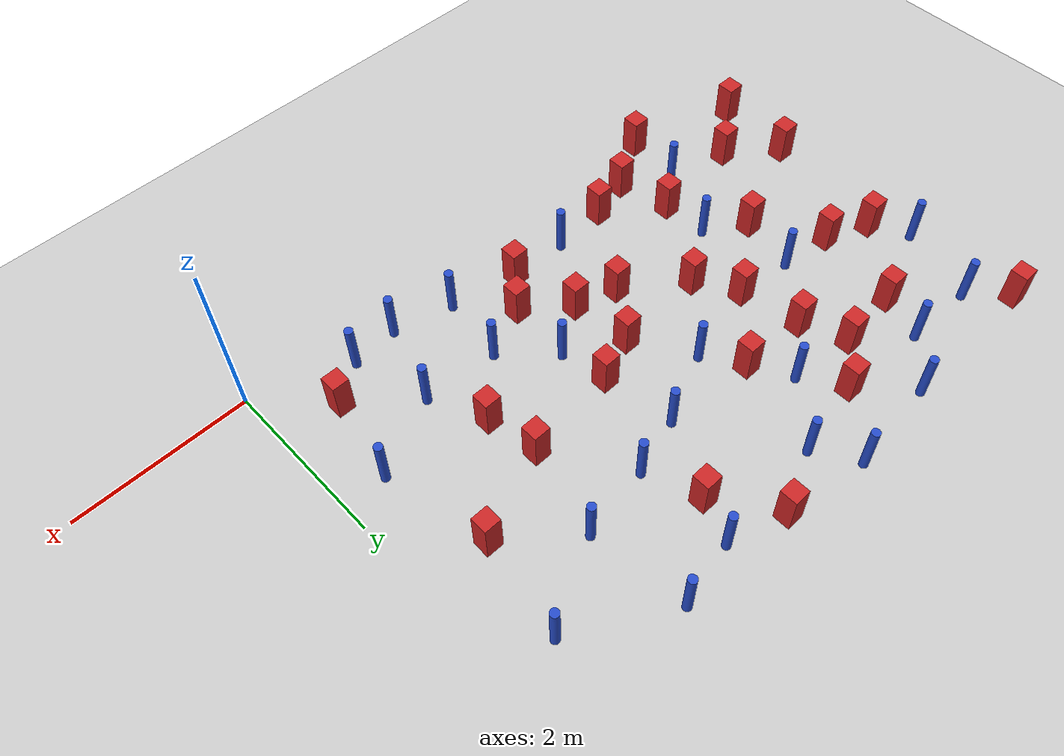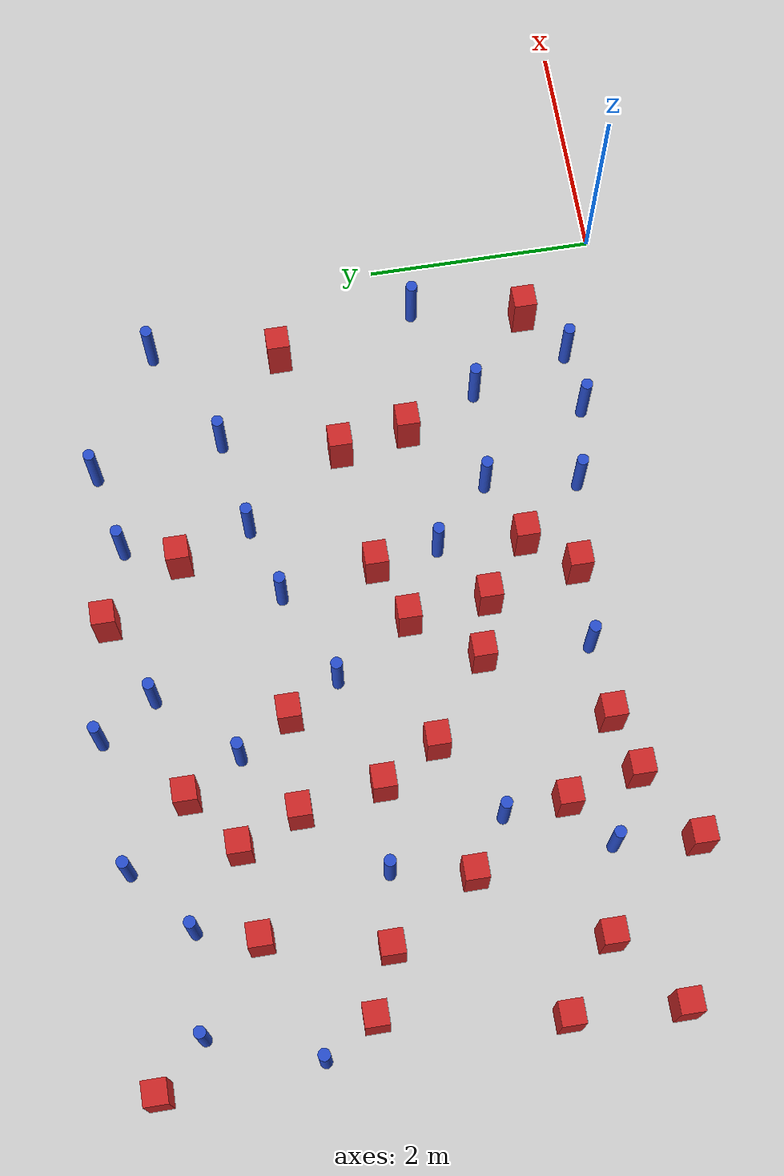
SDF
<sdf version="1.6">
 <world name="default">
  <model name="ground_plane">
   <static>1</static>
   <link name="link">
    <collision name="collision">
     <geometry><plane><normal>0 0 1</normal><size>100 100</size></plane></geometry>
     <surface><friction><ode><mu>100</mu><mu2>50</mu2></ode></friction></surface>
    </collision>
    <visual name="visual">
     <cast_shadows>0</cast_shadows>
     <geometry><plane><normal>0 0 1</normal><size>100 100</size></plane></geometry>
     <material>
      <ambient>1.0 1.0 1.0 1.0</ambient>
      <diffuse>0.8 0.8 0.8 1.0</diffuse>
      <specular>0.01 0.01 0.01 1.000000</specular>
     </material>
    </visual>
   </link>
  </model>
  <model name="pole_obstacle2">
   <static>true</static>
   <pose>-0.487812181251 1.71194919246 -9.47619616065e-06 5.49618799738e-07 2.36310414059e-07 -1.55090534802e-07</pose>
   <link name="link">
    <pose>0 0 0.3 0 -0 0</pose>
    <inertial>
     <mass>1</mass>
     <inertia><ixx>0.145833</ixx><ixy>0</ixy><ixz>0</ixz><iyy>0.145833</iyy><iyz>0</iyz><izz>0.125</izz></inertia>
    </inertial>
    <collision name="collision">
     <geometry><cylinder><radius>0.05</radius><length>.6</length></cylinder></geometry>
    </collision>
    <visual name="visual">
     <geometry><cylinder><radius>0.05</radius><length>.6</length></cylinder></geometry>
     <material>
      <script><name>Gazebo/Blue</name><uri>file://media/materials/scripts/gazebo.material</uri></script>
     </material>
    </visual>
   </link>
  </model>
  <model name="pole_obstacle3">
   <static>true</static>
   <pose>-5.50317847386 0.870224016151 -9.47619616065e-06 5.49618799737e-07 2.36310414061e-07 -1.550905348e-07</pose>
   <link name="link">
    <pose>0 0 0.3 0 -0 0</pose>
    <inertial>
     <mass>1</mass>
     <inertia><ixx>0.145833</ixx><ixy>0</ixy><ixz>0</ixz><iyy>0.145833</iyy><iyz>0</iyz><izz>0.125</izz></inertia>
    </inertial>
    <collision name="collision">
     <geometry><cylinder><radius>0.05</radius><length>.6</length></cylinder></geometry>
    </collision>
    <visual name="visual">
     <geometry><cylinder><radius>0.05</radius><length>.6</length></cylinder></geometry>
     <material>
      <script><name>Gazebo/Blue</name><uri>file://media/materials/scripts/gazebo.material</uri></script>
     </material>
    </visual>
   </link>
  </model>
  <model name="pole_obstacle5">
   <static>true</static>
   <pose>-3.71422850612 4.40279073542 -9.47619616065e-06 5.49618799738e-07 2.3631041406e-07 -1.55090534801e-07</pose>
   <link name="link">
    <pose>0 0 0.3 0 -0 0</pose>
    <inertial>
     <mass>1</mass>
     <inertia><ixx>0.145833</ixx><ixy>0</ixy><ixz>0</ixz><iyy>0.145833</iyy><iyz>0</iyz><izz>0.125</izz></inertia>
    </inertial>
    <collision name="collision">
     <geometry><cylinder><radius>0.05</radius><length>.6</length></cylinder></geometry>
    </collision>
    <visual name="visual">
     <geometry><cylinder><radius>0.05</radius><length>.6</length></cylinder></geometry>
     <material>
      <script><name>Gazebo/Blue</name><uri>file://media/materials/scripts/gazebo.material</uri></script>
     </material>
    </visual>
   </link>
  </model>
  <model name="pole_obstacle18">
   <static>true</static>
   <pose>-4.31520111858 3.75817734004 -9.47619616065e-06 5.49618799738e-07 2.36310414051e-07 -1.55090534805e-07</pose>
   <link name="link">
    <pose>0 0 0.3 0 -0 0</pose>
    <inertial>
     <mass>1</mass>
     <inertia><ixx>0.145833</ixx><ixy>0</ixy><ixz>0</ixz><iyy>0.145833</iyy><iyz>0</iyz><izz>0.125</izz></inertia>
    </inertial>
    <collision name="collision">
     <geometry><cylinder><radius>0.05</radius><length>.6</length></cylinder></geometry>
    </collision>
    <visual name="visual">
     <geometry><cylinder><radius>0.05</radius><length>.6</length></cylinder></geometry>
     <material>
      <script><name>Gazebo/Blue</name><uri>file://media/materials/scripts/gazebo.material</uri></script>
     </material>
    </visual>
   </link>
  </model>
  <model name="pole_obstacle20">
   <static>true</static>
   <pose>-3.78402829813 2.87094932875 -9.47619616065e-06 5.49618799737e-07 2.36310414051e-07 -1.55090534807e-07</pose>
   <link name="link">
    <pose>0 0 0.3 0 -0 0</pose>
    <inertial>
     <mass>1</mass>
     <inertia><ixx>0.145833</ixx><ixy>0</ixy><ixz>0</ixz><iyy>0.145833</iyy><iyz>0</iyz><izz>0.125</izz></inertia>
    </inertial>
    <collision name="collision">
     <geometry><cylinder><radius>0.05</radius><length>.6</length></cylinder></geometry>
    </collision>
    <visual name="visual">
     <geometry><cylinder><radius>0.05</radius><length>.6</length></cylinder></geometry>
     <material>
      <script><name>Gazebo/Blue</name><uri>file://media/materials/scripts/gazebo.material</uri></script>
     </material>
    </visual>
   </link>
  </model>
  <model name="square_post_obstacle19">
   <static>true</static>
   <pose>-2.54614437355 4.04797166658 -6.11067671241e-07 -5.50515727128e-06 -8.79689657224e-07 2.37013304536e-05</pose>
   <link name="link">
    <pose>0 0 0.25 0 -0 0</pose>
    <inertial>
     <mass>100</mass>
     <inertia>
      <ixx>0.166667</ixx>
      <ixy>0</ixy>
      <ixz>0</ixz>
      <iyy>0.166667</iyy>
      <iyz>0</iyz>
      <izz>0.166667</izz>
     </inertia>
    </inertial>
    <collision name="collision"><geometry><box><size>.2 .2 .5</size></box></geometry></collision>
    <visual name="visual">
     <geometry><box><size>.2 .2 .5</size></box></geometry>
     <material>
      <script><name>Gazebo/Red</name><uri>file://media/materials/scripts/gazebo.material</uri></script>
     </material>
    </visual>
   </link>
  </model>
  <model name="square_post_obstacle20">
   <static>true</static>
   <pose>-1.64522488494 1.94039858455 -6.11067671241e-07 -5.50515727128e-06 -8.79689657224e-07 2.37013304536e-05</pose>
   <link name="link">
    <pose>0 0 0.25 0 -0 0</pose>
    <inertial>
     <mass>100</mass>
     <inertia>
      <ixx>0.166667</ixx>
      <ixy>0</ixy>
      <ixz>0</ixz>
      <iyy>0.166667</iyy>
      <iyz>0</iyz>
      <izz>0.166667</izz>
     </inertia>
    </inertial>
    <collision name="collision"><geometry><box><size>.2 .2 .5</size></box></geometry></collision>
    <visual name="visual">
     <geometry><box><size>.2 .2 .5</size></box></geometry>
     <material>
      <script><name>Gazebo/Red</name><uri>file://media/materials/scripts/gazebo.material</uri></script>
     </material>
    </visual>
   </link>
  </model>
  <model name="square_post_obstacle26">
   <static>true</static>
   <pose>-5.07294095432 3.85860323754 -6.11067671241e-07 -5.50515727128e-06 -8.79689657224e-07 2.37013304536e-05</pose>
   <link name="link">
    <pose>0 0 0.25 0 -0 0</pose>
    <inertial>
     <mass>100</mass>
     <inertia>
      <ixx>0.166667</ixx>
      <ixy>0</ixy>
      <ixz>0</ixz>
      <iyy>0.166667</iyy>
      <iyz>0</iyz>
      <izz>0.166667</izz>
     </inertia>
    </inertial>
    <collision name="collision"><geometry><box><size>.2 .2 .5</size></box></geometry></collision>
    <visual name="visual">
     <geometry><box><size>.2 .2 .5</size></box></geometry>
     <material>
      <script><name>Gazebo/Red</name><uri>file://media/materials/scripts/gazebo.material</uri></script>
     </material>
    </visual>
   </link>
  </model>
  <model name="pole_obstacle38">
   <static>true</static>
   <pose>-1.36304623813 1.29198573538 -9.47619616065e-06 5.49618799737e-07 2.36310414065e-07 -1.55090534798e-07</pose>
   <link name="link">
    <pose>0 0 0.3 0 -0 0</pose>
    <inertial>
     <mass>1</mass>
     <inertia><ixx>0.145833</ixx><ixy>0</ixy><ixz>0</ixz><iyy>0.145833</iyy><iyz>0</iyz><izz>0.125</izz></inertia>
    </inertial>
    <collision name="collision">
     <geometry><cylinder><radius>0.05</radius><length>.6</length></cylinder></geometry>
    </collision>
    <visual name="visual">
     <geometry><cylinder><radius>0.05</radius><length>.6</length></cylinder></geometry>
     <material>
      <script><name>Gazebo/Blue</name><uri>file://media/materials/scripts/gazebo.material</uri></script>
     </material>
    </visual>
   </link>
  </model>
  <model name="square_post_obstacle33">
   <static>true</static>
   <pose>-6.04896330188 2.77622081307 -6.11067671241e-07 -5.50515727128e-06 -8.79689657224e-07 2.37013304536e-05</pose>
   <link name="link">
    <pose>0 0 0.25 0 -0 0</pose>
    <inertial>
     <mass>100</mass>
     <inertia>
      <ixx>0.166667</ixx>
      <ixy>0</ixy>
      <ixz>0</ixz>
      <iyy>0.166667</iyy>
      <iyz>0</iyz>
      <izz>0.166667</izz>
     </inertia>
    </inertial>
    <collision name="collision"><geometry><box><size>.2 .2 .5</size></box></geometry></collision>
    <visual name="visual">
     <geometry><box><size>.2 .2 .5</size></box></geometry>
     <material>
      <script><name>Gazebo/Red</name><uri>file://media/materials/scripts/gazebo.material</uri></script>
     </material>
    </visual>
   </link>
  </model>
  <model name="pole_obstacle43">
   <static>true</static>
   <pose>-6.50061672788 4.32821319928 -9.47619616065e-06 5.49618799737e-07 2.36310414037e-07 -1.55090534814e-07</pose>
   <link name="link">
    <pose>0 0 0.3 0 -0 0</pose>
    <inertial>
     <mass>1</mass>
     <inertia><ixx>0.145833</ixx><ixy>0</ixy><ixz>0</ixz><iyy>0.145833</iyy><iyz>0</iyz><izz>0.125</izz></inertia>
    </inertial>
    <collision name="collision">
     <geometry><cylinder><radius>0.05</radius><length>.6</length></cylinder></geometry>
    </collision>
    <visual name="visual">
     <geometry><cylinder><radius>0.05</radius><length>.6</length></cylinder></geometry>
     <material>
      <script><name>Gazebo/Blue</name><uri>file://media/materials/scripts/gazebo.material</uri></script>
     </material>
    </visual>
   </link>
  </model>
  <model name="pole_obstacle46">
   <static>true</static>
   <pose>-1.63887279554 4.67150877002 -9.47619616065e-06 5.49618799737e-07 2.36310414061e-07 -1.550905348e-07</pose>
   <link name="link">
    <pose>0 0 0.3 0 -0 0</pose>
    <inertial>
     <mass>1</mass>
     <inertia><ixx>0.145833</ixx><ixy>0</ixy><ixz>0</ixz><iyy>0.145833</iyy><iyz>0</iyz><izz>0.125</izz></inertia>
    </inertial>
    <collision name="collision">
     <geometry><cylinder><radius>0.05</radius><length>.6</length></cylinder></geometry>
    </collision>
    <visual name="visual">
     <geometry><cylinder><radius>0.05</radius><length>.6</length></cylinder></geometry>
     <material>
      <script><name>Gazebo/Blue</name><uri>file://media/materials/scripts/gazebo.material</uri></script>
     </material>
    </visual>
   </link>
  </model>
  <model name="square_post_obstacle41">
   <static>true</static>
   <pose>-5.57510679482 2.03123763137 -6.11067671241e-07 -5.50515727128e-06 -8.79689657224e-07 2.37013304536e-05</pose>
   <link name="link">
    <pose>0 0 0.25 0 -0 0</pose>
    <inertial>
     <mass>100</mass>
     <inertia>
      <ixx>0.166667</ixx>
      <ixy>0</ixy>
      <ixz>0</ixz>
      <iyy>0.166667</iyy>
      <iyz>0</iyz>
      <izz>0.166667</izz>
     </inertia>
    </inertial>
    <collision name="collision"><geometry><box><size>.2 .2 .5</size></box></geometry></collision>
    <visual name="visual">
     <geometry><box><size>.2 .2 .5</size></box></geometry>
     <material>
      <script><name>Gazebo/Red</name><uri>file://media/materials/scripts/gazebo.material</uri></script>
     </material>
    </visual>
   </link>
  </model>
  <model name="pole_obstacle56">
   <static>true</static>
   <pose>-2.97974586551 3.22970133731 -9.47619616065e-06 5.49618799737e-07 2.36310414051e-07 -1.55090534807e-07</pose>
   <link name="link">
    <pose>0 0 0.3 0 -0 0</pose>
    <inertial>
     <mass>1</mass>
     <inertia><ixx>0.145833</ixx><ixy>0</ixy><ixz>0</ixz><iyy>0.145833</iyy><iyz>0</iyz><izz>0.125</izz></inertia>
    </inertial>
    <collision name="collision">
     <geometry><cylinder><radius>0.05</radius><length>.6</length></cylinder></geometry>
    </collision>
    <visual name="visual">
     <geometry><cylinder><radius>0.05</radius><length>.6</length></cylinder></geometry>
     <material>
      <script><name>Gazebo/Blue</name><uri>file://media/materials/scripts/gazebo.material</uri></script>
     </material>
    </visual>
   </link>
  </model>
  <model name="pole_obstacle59">
   <static>true</static>
   <pose>-2.33032929093 3.42138777364 -9.47619616065e-06 5.49618799737e-07 2.36310414051e-07 -1.55090534807e-07</pose>
   <link name="link">
    <pose>0 0 0.3 0 -0 0</pose>
    <inertial>
     <mass>1</mass>
     <inertia><ixx>0.145833</ixx><ixy>0</ixy><ixz>0</ixz><iyy>0.145833</iyy><iyz>0</iyz><izz>0.125</izz></inertia>
    </inertial>
    <collision name="collision">
     <geometry><cylinder><radius>0.05</radius><length>.6</length></cylinder></geometry>
    </collision>
    <visual name="visual">
     <geometry><cylinder><radius>0.05</radius><length>.6</length></cylinder></geometry>
     <material>
      <script><name>Gazebo/Blue</name><uri>file://media/materials/scripts/gazebo.material</uri></script>
     </material>
    </visual>
   </link>
  </model>
  <model name="pole_obstacle64">
   <static>true</static>
   <pose>-0.558074458231 4.06157313084 -9.47619616065e-06 5.49618799737e-07 2.36310414065e-07 -1.55090534796e-07</pose>
   <link name="link">
    <pose>0 0 0.3 0 -0 0</pose>
    <inertial>
     <mass>1</mass>
     <inertia><ixx>0.145833</ixx><ixy>0</ixy><ixz>0</ixz><iyy>0.145833</iyy><iyz>0</iyz><izz>0.125</izz></inertia>
    </inertial>
    <collision name="collision">
     <geometry><cylinder><radius>0.05</radius><length>.6</length></cylinder></geometry>
    </collision>
    <visual name="visual">
     <geometry><cylinder><radius>0.05</radius><length>.6</length></cylinder></geometry>
     <material>
      <script><name>Gazebo/Blue</name><uri>file://media/materials/scripts/gazebo.material</uri></script>
     </material>
    </visual>
   </link>
  </model>
  <model name="square_post_obstacle58">
   <static>true</static>
   <pose>-6.84810403469 0.579750207373 -6.11067671241e-07 -5.50515727128e-06 -8.79689657224e-07 2.37013304536e-05</pose>
   <link name="link">
    <pose>0 0 0.25 0 -0 0</pose>
    <inertial>
     <mass>100</mass>
     <inertia>
      <ixx>0.166667</ixx>
      <ixy>0</ixy>
      <ixz>0</ixz>
      <iyy>0.166667</iyy>
      <iyz>0</iyz>
      <izz>0.166667</izz>
     </inertia>
    </inertial>
    <collision name="collision"><geometry><box><size>.2 .2 .5</size></box></geometry></collision>
    <visual name="visual">
     <geometry><box><size>.2 .2 .5</size></box></geometry>
     <material>
      <script><name>Gazebo/Red</name><uri>file://media/materials/scripts/gazebo.material</uri></script>
     </material>
    </visual>
   </link>
  </model>
  <model name="square_post_obstacle72">
   <static>true</static>
   <pose>-4.73880773252 2.63555104784 -6.11067671241e-07 -5.50515727128e-06 -8.79689657224e-07 2.37013304536e-05</pose>
   <link name="link">
    <pose>0 0 0.25 0 -0 0</pose>
    <inertial>
     <mass>100</mass>
     <inertia>
      <ixx>0.166667</ixx>
      <ixy>0</ixy>
      <ixz>0</ixz>
      <iyy>0.166667</iyy>
      <iyz>0</iyz>
      <izz>0.166667</izz>
     </inertia>
    </inertial>
    <collision name="collision"><geometry><box><size>.2 .2 .5</size></box></geometry></collision>
    <visual name="visual">
     <geometry><box><size>.2 .2 .5</size></box></geometry>
     <material>
      <script><name>Gazebo/Red</name><uri>file://media/materials/scripts/gazebo.material</uri></script>
     </material>
    </visual>
   </link>
  </model>
  <model name="square_post_obstacle73">
   <static>true</static>
   <pose>-0.686974482907 0.739586899729 -6.11067671241e-07 -5.50515727128e-06 -8.79689657224e-07 2.37013304536e-05</pose>
   <link name="link">
    <pose>0 0 0.25 0 -0 0</pose>
    <inertial>
     <mass>100</mass>
     <inertia>
      <ixx>0.166667</ixx>
      <ixy>0</ixy>
      <ixz>0</ixz>
      <iyy>0.166667</iyy>
      <iyz>0</iyz>
      <izz>0.166667</izz>
     </inertia>
    </inertial>
    <collision name="collision"><geometry><box><size>.2 .2 .5</size></box></geometry></collision>
    <visual name="visual">
     <geometry><box><size>.2 .2 .5</size></box></geometry>
     <material>
      <script><name>Gazebo/Red</name><uri>file://media/materials/scripts/gazebo.material</uri></script>
     </material>
    </visual>
   </link>
  </model>
  <model name="square_post_obstacle83">
   <static>true</static>
   <pose>-4.95301688087 0.562530819166 -6.11067671241e-07 -5.50515727128e-06 -8.79689657224e-07 2.37013304536e-05</pose>
   <link name="link">
    <pose>0 0 0.25 0 -0 0</pose>
    <inertial>
     <mass>100</mass>
     <inertia>
      <ixx>0.166667</ixx>
      <ixy>0</ixy>
      <ixz>0</ixz>
      <iyy>0.166667</iyy>
      <iyz>0</iyz>
      <izz>0.166667</izz>
     </inertia>
    </inertial>
    <collision name="collision"><geometry><box><size>.2 .2 .5</size></box></geometry></collision>
    <visual name="visual">
     <geometry><box><size>.2 .2 .5</size></box></geometry>
     <material>
      <script><name>Gazebo/Red</name><uri>file://media/materials/scripts/gazebo.material</uri></script>
     </material>
    </visual>
   </link>
  </model>
  <model name="pole_obstacle94">
   <static>true</static>
   <pose>-1.4989461862 3.55707421389 -9.47619616065e-06 5.49618799737e-07 2.36310414062e-07 -1.55090534798e-07</pose>
   <link name="link">
    <pose>0 0 0.3 0 -0 0</pose>
    <inertial>
     <mass>1</mass>
     <inertia><ixx>0.145833</ixx><ixy>0</ixy><ixz>0</ixz><iyy>0.145833</iyy><iyz>0</iyz><izz>0.125</izz></inertia>
    </inertial>
    <collision name="collision">
     <geometry><cylinder><radius>0.05</radius><length>.6</length></cylinder></geometry>
    </collision>
    <visual name="visual">
     <geometry><cylinder><radius>0.05</radius><length>.6</length></cylinder></geometry>
     <material>
      <script><name>Gazebo/Blue</name><uri>file://media/materials/scripts/gazebo.material</uri></script>
     </material>
    </visual>
   </link>
  </model>
  <model name="square_post_obstacle93">
   <static>true</static>
   <pose>-6.56298488728 2.98589634851 -6.11067671241e-07 -5.50515727128e-06 -8.79689657224e-07 2.37013304536e-05</pose>
   <link name="link">
    <pose>0 0 0.25 0 -0 0</pose>
    <inertial>
     <mass>100</mass>
     <inertia>
      <ixx>0.166667</ixx>
      <ixy>0</ixy>
      <ixz>0</ixz>
      <iyy>0.166667</iyy>
      <iyz>0</iyz>
      <izz>0.166667</izz>
     </inertia>
    </inertial>
    <collision name="collision"><geometry><box><size>.2 .2 .5</size></box></geometry></collision>
    <visual name="visual">
     <geometry><box><size>.2 .2 .5</size></box></geometry>
     <material>
      <script><name>Gazebo/Red</name><uri>file://media/materials/scripts/gazebo.material</uri></script>
     </material>
    </visual>
   </link>
  </model>
  <model name="square_post_obstacle94">
   <static>true</static>
   <pose>-3.36433779309 2.20661417713 -6.11067671241e-07 -5.50515727128e-06 -8.79689657224e-07 2.37013304536e-05</pose>
   <link name="link">
    <pose>0 0 0.25 0 -0 0</pose>
    <inertial>
     <mass>100</mass>
     <inertia>
      <ixx>0.166667</ixx>
      <ixy>0</ixy>
      <ixz>0</ixz>
      <iyy>0.166667</iyy>
      <iyz>0</iyz>
      <izz>0.166667</izz>
     </inertia>
    </inertial>
    <collision name="collision"><geometry><box><size>.2 .2 .5</size></box></geometry></collision>
    <visual name="visual">
     <geometry><box><size>.2 .2 .5</size></box></geometry>
     <material>
      <script><name>Gazebo/Red</name><uri>file://media/materials/scripts/gazebo.material</uri></script>
     </material>
    </visual>
   </link>
  </model>
  <model name="pole_obstacle102">
   <static>true</static>
   <pose>-1.1146924168 0.422353284665 -9.47619616065e-06 5.49618799737e-07 2.36310414064e-07 -1.55090534799e-07</pose>
   <link name="link">
    <pose>0 0 0.3 0 -0 0</pose>
    <inertial>
     <mass>1</mass>
     <inertia><ixx>0.145833</ixx><ixy>0</ixy><ixz>0</ixz><iyy>0.145833</iyy><iyz>0</iyz><izz>0.125</izz></inertia>
    </inertial>
    <collision name="collision">
     <geometry><cylinder><radius>0.05</radius><length>.6</length></cylinder></geometry>
    </collision>
    <visual name="visual">
     <geometry><cylinder><radius>0.05</radius><length>.6</length></cylinder></geometry>
     <material>
      <script><name>Gazebo/Blue</name><uri>file://media/materials/scripts/gazebo.material</uri></script>
     </material>
    </visual>
   </link>
  </model>
  <model name="pole_obstacle110">
   <static>true</static>
   <pose>-5.66726535735 4.3028033624 -9.47619616065e-06 5.49618799737e-07 2.36310414037e-07 -1.55090534814e-07</pose>
   <link name="link">
    <pose>0 0 0.3 0 -0 0</pose>
    <inertial>
     <mass>1</mass>
     <inertia><ixx>0.145833</ixx><ixy>0</ixy><ixz>0</ixz><iyy>0.145833</iyy><iyz>0</iyz><izz>0.125</izz></inertia>
    </inertial>
    <collision name="collision">
     <geometry><cylinder><radius>0.05</radius><length>.6</length></cylinder></geometry>
    </collision>
    <visual name="visual">
     <geometry><cylinder><radius>0.05</radius><length>.6</length></cylinder></geometry>
     <material>
      <script><name>Gazebo/Blue</name><uri>file://media/materials/scripts/gazebo.material</uri></script>
     </material>
    </visual>
   </link>
  </model>
  <model name="square_post_obstacle104">
   <static>true</static>
   <pose>-5.82156051148 3.79033473281 -6.11067671241e-07 -5.50515727128e-06 -8.79689657224e-07 2.37013304536e-05</pose>
   <link name="link">
    <pose>0 0 0.25 0 -0 0</pose>
    <inertial>
     <mass>100</mass>
     <inertia>
      <ixx>0.166667</ixx>
      <ixy>0</ixy>
      <ixz>0</ixz>
      <iyy>0.166667</iyy>
      <iyz>0</iyz>
      <izz>0.166667</izz>
     </inertia>
    </inertial>
    <collision name="collision"><geometry><box><size>.2 .2 .5</size></box></geometry></collision>
    <visual name="visual">
     <geometry><box><size>.2 .2 .5</size></box></geometry>
     <material>
      <script><name>Gazebo/Red</name><uri>file://media/materials/scripts/gazebo.material</uri></script>
     </material>
    </visual>
   </link>
  </model>
  <model name="square_post_obstacle107">
   <static>true</static>
   <pose>-4.45290474772 0.692908418465 -6.11067671241e-07 -5.50515727128e-06 -8.79689657224e-07 2.37013304536e-05</pose>
   <link name="link">
    <pose>0 0 0.25 0 -0 0</pose>
    <inertial>
     <mass>100</mass>
     <inertia>
      <ixx>0.166667</ixx>
      <ixy>0</ixy>
      <ixz>0</ixz>
      <iyy>0.166667</iyy>
      <iyz>0</iyz>
      <izz>0.166667</izz>
     </inertia>
    </inertial>
    <collision name="collision"><geometry><box><size>.2 .2 .5</size></box></geometry></collision>
    <visual name="visual">
     <geometry><box><size>.2 .2 .5</size></box></geometry>
     <material>
      <script><name>Gazebo/Red</name><uri>file://media/materials/scripts/gazebo.material</uri></script>
     </material>
    </visual>
   </link>
  </model>
  <model name="pole_obstacle125">
   <static>true</static>
   <pose>-3.80908332965 0.730824033454 -9.47619616065e-06 5.49618799738e-07 2.36310414075e-07 -1.55090534793e-07</pose>
   <link name="link">
    <pose>0 0 0.3 0 -0 0</pose>
    <inertial>
     <mass>1</mass>
     <inertia><ixx>0.145833</ixx><ixy>0</ixy><ixz>0</ixz><iyy>0.145833</iyy><iyz>0</iyz><izz>0.125</izz></inertia>
    </inertial>
    <collision name="collision">
     <geometry><cylinder><radius>0.05</radius><length>.6</length></cylinder></geometry>
    </collision>
    <visual name="visual">
     <geometry><cylinder><radius>0.05</radius><length>.6</length></cylinder></geometry>
     <material>
      <script><name>Gazebo/Blue</name><uri>file://media/materials/scripts/gazebo.material</uri></script>
     </material>
    </visual>
   </link>
  </model>
  <model name="square_post_obstacle133">
   <static>true</static>
   <pose>-4.86017825581 3.34209731672 -6.11067671241e-07 -5.50515727128e-06 -8.79689657224e-07 2.37013304536e-05</pose>
   <link name="link">
    <pose>0 0 0.25 0 -0 0</pose>
    <inertial>
     <mass>100</mass>
     <inertia>
      <ixx>0.166667</ixx>
      <ixy>0</ixy>
      <ixz>0</ixz>
      <iyy>0.166667</iyy>
      <iyz>0</iyz>
      <izz>0.166667</izz>
     </inertia>
    </inertial>
    <collision name="collision"><geometry><box><size>.2 .2 .5</size></box></geometry></collision>
    <visual name="visual">
     <geometry><box><size>.2 .2 .5</size></box></geometry>
     <material>
      <script><name>Gazebo/Red</name><uri>file://media/materials/scripts/gazebo.material</uri></script>
     </material>
    </visual>
   </link>
  </model>
  <model name="pole_obstacle140">
   <static>true</static>
   <pose>-5.44076994209 2.69561626141 -9.47619616065e-06 5.49618799738e-07 2.36310414051e-07 -1.55090534805e-07</pose>
   <link name="link">
    <pose>0 0 0.3 0 -0 0</pose>
    <inertial>
     <mass>1</mass>
     <inertia><ixx>0.145833</ixx><ixy>0</ixy><ixz>0</ixz><iyy>0.145833</iyy><iyz>0</iyz><izz>0.125</izz></inertia>
    </inertial>
    <collision name="collision">
     <geometry><cylinder><radius>0.05</radius><length>.6</length></cylinder></geometry>
    </collision>
    <visual name="visual">
     <geometry><cylinder><radius>0.05</radius><length>.6</length></cylinder></geometry>
     <material>
      <script><name>Gazebo/Blue</name><uri>file://media/materials/scripts/gazebo.material</uri></script>
     </material>
    </visual>
   </link>
  </model>
  <model name="square_post_obstacle136">
   <static>true</static>
   <pose>-6.87215022418 4.72628115701 -6.11067671241e-07 -5.50515727128e-06 -8.79689657224e-07 2.37013304536e-05</pose>
   <link name="link">
    <pose>0 0 0.25 0 -0 0</pose>
    <inertial>
     <mass>100</mass>
     <inertia>
      <ixx>0.166667</ixx>
      <ixy>0</ixy>
      <ixz>0</ixz>
      <iyy>0.166667</iyy>
      <iyz>0</iyz>
      <izz>0.166667</izz>
     </inertia>
    </inertial>
    <collision name="collision"><geometry><box><size>.2 .2 .5</size></box></geometry></collision>
    <visual name="visual">
     <geometry><box><size>.2 .2 .5</size></box></geometry>
     <material>
      <script><name>Gazebo/Red</name><uri>file://media/materials/scripts/gazebo.material</uri></script>
     </material>
    </visual>
   </link>
  </model>
  <model name="pole_obstacle144">
   <static>true</static>
   <pose>-5.12099727735 4.76630900202 -9.47619616065e-06 5.49618799737e-07 2.36310414037e-07 -1.55090534814e-07</pose>
   <link name="link">
    <pose>0 0 0.3 0 -0 0</pose>
    <inertial>
     <mass>1</mass>
     <inertia><ixx>0.145833</ixx><ixy>0</ixy><ixz>0</ixz><iyy>0.145833</iyy><iyz>0</iyz><izz>0.125</izz></inertia>
    </inertial>
    <collision name="collision">
     <geometry><cylinder><radius>0.05</radius><length>.6</length></cylinder></geometry>
    </collision>
    <visual name="visual">
     <geometry><cylinder><radius>0.05</radius><length>.6</length></cylinder></geometry>
     <material>
      <script><name>Gazebo/Blue</name><uri>file://media/materials/scripts/gazebo.material</uri></script>
     </material>
    </visual>
   </link>
  </model>
  <model name="pole_obstacle157">
   <static>true</static>
   <pose>-5.13179507145 1.71138823037 -9.47619616065e-06 5.49618799738e-07 2.36310414071e-07 -1.55090534796e-07</pose>
   <link name="link">
    <pose>0 0 0.3 0 -0 0</pose>
    <inertial>
     <mass>1</mass>
     <inertia><ixx>0.145833</ixx><ixy>0</ixy><ixz>0</ixz><iyy>0.145833</iyy><iyz>0</iyz><izz>0.125</izz></inertia>
    </inertial>
    <collision name="collision">
     <geometry><cylinder><radius>0.05</radius><length>.6</length></cylinder></geometry>
    </collision>
    <visual name="visual">
     <geometry><cylinder><radius>0.05</radius><length>.6</length></cylinder></geometry>
     <material>
      <script><name>Gazebo/Blue</name><uri>file://media/materials/scripts/gazebo.material</uri></script>
     </material>
    </visual>
   </link>
  </model>
  <model name="square_post_obstacle153">
   <static>true</static>
   <pose>-1.74540856157 2.54298090651 -6.11067671241e-07 -5.50515727128e-06 -8.79689657224e-07 2.37013304536e-05</pose>
   <link name="link">
    <pose>0 0 0.25 0 -0 0</pose>
    <inertial>
     <mass>100</mass>
     <inertia>
      <ixx>0.166667</ixx>
      <ixy>0</ixy>
      <ixz>0</ixz>
      <iyy>0.166667</iyy>
      <iyz>0</iyz>
      <izz>0.166667</izz>
     </inertia>
    </inertial>
    <collision name="collision"><geometry><box><size>.2 .2 .5</size></box></geometry></collision>
    <visual name="visual">
     <geometry><box><size>.2 .2 .5</size></box></geometry>
     <material>
      <script><name>Gazebo/Red</name><uri>file://media/materials/scripts/gazebo.material</uri></script>
     </material>
    </visual>
   </link>
  </model>
  <model name="pole_obstacle160">
   <static>true</static>
   <pose>-2.75894895587 1.85314903466 -9.47619616065e-06 5.49618799737e-07 2.36310414072e-07 -1.55090534793e-07</pose>
   <link name="link">
    <pose>0 0 0.3 0 -0 0</pose>
    <inertial>
     <mass>1</mass>
     <inertia><ixx>0.145833</ixx><ixy>0</ixy><ixz>0</ixz><iyy>0.145833</iyy><iyz>0</iyz><izz>0.125</izz></inertia>
    </inertial>
    <collision name="collision">
     <geometry><cylinder><radius>0.05</radius><length>.6</length></cylinder></geometry>
    </collision>
    <visual name="visual">
     <geometry><cylinder><radius>0.05</radius><length>.6</length></cylinder></geometry>
     <material>
      <script><name>Gazebo/Blue</name><uri>file://media/materials/scripts/gazebo.material</uri></script>
     </material>
    </visual>
   </link>
  </model>
  <model name="pole_obstacle161">
   <static>true</static>
   <pose>-2.23372867126 1.34903382826 -9.47619616065e-06 5.49618799737e-07 2.36310414072e-07 -1.55090534793e-07</pose>
   <link name="link">
    <pose>0 0 0.3 0 -0 0</pose>
    <inertial>
     <mass>1</mass>
     <inertia><ixx>0.145833</ixx><ixy>0</ixy><ixz>0</ixz><iyy>0.145833</iyy><iyz>0</iyz><izz>0.125</izz></inertia>
    </inertial>
    <collision name="collision">
     <geometry><cylinder><radius>0.05</radius><length>.6</length></cylinder></geometry>
    </collision>
    <visual name="visual">
     <geometry><cylinder><radius>0.05</radius><length>.6</length></cylinder></geometry>
     <material>
      <script><name>Gazebo/Blue</name><uri>file://media/materials/scripts/gazebo.material</uri></script>
     </material>
    </visual>
   </link>
  </model>
  <model name="square_post_obstacle162">
   <static>true</static>
   <pose>-3.12930426376 0.712265454828 -6.11067671241e-07 -5.50515727128e-06 -8.79689657224e-07 2.37013304536e-05</pose>
   <link name="link">
    <pose>0 0 0.25 0 -0 0</pose>
    <inertial>
     <mass>100</mass>
     <inertia>
      <ixx>0.166667</ixx>
      <ixy>0</ixy>
      <ixz>0</ixz>
      <iyy>0.166667</iyy>
      <iyz>0</iyz>
      <izz>0.166667</izz>
     </inertia>
    </inertial>
    <collision name="collision"><geometry><box><size>.2 .2 .5</size></box></geometry></collision>
    <visual name="visual">
     <geometry><box><size>.2 .2 .5</size></box></geometry>
     <material>
      <script><name>Gazebo/Red</name><uri>file://media/materials/scripts/gazebo.material</uri></script>
     </material>
    </visual>
   </link>
  </model>
  <model name="pole_obstacle167">
   <static>true</static>
   <pose>-2.35830070955 4.51604263742 -9.47619616065e-06 5.49618799738e-07 2.3631041406e-07 -1.55090534801e-07</pose>
   <link name="link">
    <pose>0 0 0.3 0 -0 0</pose>
    <inertial>
     <mass>1</mass>
     <inertia><ixx>0.145833</ixx><ixy>0</ixy><ixz>0</ixz><iyy>0.145833</iyy><iyz>0</iyz><izz>0.125</izz></inertia>
    </inertial>
    <collision name="collision">
     <geometry><cylinder><radius>0.05</radius><length>.6</length></cylinder></geometry>
    </collision>
    <visual name="visual">
     <geometry><cylinder><radius>0.05</radius><length>.6</length></cylinder></geometry>
     <material>
      <script><name>Gazebo/Blue</name><uri>file://media/materials/scripts/gazebo.material</uri></script>
     </material>
    </visual>
   </link>
  </model>
  <model name="square_post_obstacle166">
   <static>true</static>
   <pose>-4.46159764598 2.14903145982 -6.11067671241e-07 -5.50515727128e-06 -8.79689657224e-07 2.37013304536e-05</pose>
   <link name="link">
    <pose>0 0 0.25 0 -0 0</pose>
    <inertial>
     <mass>100</mass>
     <inertia>
      <ixx>0.166667</ixx>
      <ixy>0</ixy>
      <ixz>0</ixz>
      <iyy>0.166667</iyy>
      <iyz>0</iyz>
      <izz>0.166667</izz>
     </inertia>
    </inertial>
    <collision name="collision"><geometry><box><size>.2 .2 .5</size></box></geometry></collision>
    <visual name="visual">
     <geometry><box><size>.2 .2 .5</size></box></geometry>
     <material>
      <script><name>Gazebo/Red</name><uri>file://media/materials/scripts/gazebo.material</uri></script>
     </material>
    </visual>
   </link>
  </model>
  <model name="square_post_obstacle171">
   <static>true</static>
   <pose>-5.09673178691 1.18063784337 -6.11067671241e-07 -5.50515727128e-06 -8.79689657224e-07 2.37013304536e-05</pose>
   <link name="link">
    <pose>0 0 0.25 0 -0 0</pose>
    <inertial>
     <mass>100</mass>
     <inertia>
      <ixx>0.166667</ixx>
      <ixy>0</ixy>
      <ixz>0</ixz>
      <iyy>0.166667</iyy>
      <iyz>0</iyz>
      <izz>0.166667</izz>
     </inertia>
    </inertial>
    <collision name="collision"><geometry><box><size>.2 .2 .5</size></box></geometry></collision>
    <visual name="visual">
     <geometry><box><size>.2 .2 .5</size></box></geometry>
     <material>
      <script><name>Gazebo/Red</name><uri>file://media/materials/scripts/gazebo.material</uri></script>
     </material>
    </visual>
   </link>
  </model>
  <model name="pole_obstacle171">
   <static>true</static>
   <pose>-1.65776859113 0.375724287684 -9.47619616065e-06 5.49618799737e-07 2.36310414064e-07 -1.55090534799e-07</pose>
   <link name="link">
    <pose>0 0 0.3 0 -0 0</pose>
    <inertial>
     <mass>1</mass>
     <inertia><ixx>0.145833</ixx><ixy>0</ixy><ixz>0</ixz><iyy>0.145833</iyy><iyz>0</iyz><izz>0.125</izz></inertia>
    </inertial>
    <collision name="collision">
     <geometry><cylinder><radius>0.05</radius><length>.6</length></cylinder></geometry>
    </collision>
    <visual name="visual">
     <geometry><cylinder><radius>0.05</radius><length>.6</length></cylinder></geometry>
     <material>
      <script><name>Gazebo/Blue</name><uri>file://media/materials/scripts/gazebo.material</uri></script>
     </material>
    </visual>
   </link>
  </model>
  <model name="pole_obstacle172">
   <static>true</static>
   <pose>-4.00584518794 4.87722740369 -9.47619616065e-06 5.49618799737e-07 2.36310414031e-07 -1.55090534817e-07</pose>
   <link name="link">
    <pose>0 0 0.3 0 -0 0</pose>
    <inertial>
     <mass>1</mass>
     <inertia><ixx>0.145833</ixx><ixy>0</ixy><ixz>0</ixz><iyy>0.145833</iyy><iyz>0</iyz><izz>0.125</izz></inertia>
    </inertial>
    <collision name="collision">
     <geometry><cylinder><radius>0.05</radius><length>.6</length></cylinder></geometry>
    </collision>
    <visual name="visual">
     <geometry><cylinder><radius>0.05</radius><length>.6</length></cylinder></geometry>
     <material>
      <script><name>Gazebo/Blue</name><uri>file://media/materials/scripts/gazebo.material</uri></script>
     </material>
    </visual>
   </link>
  </model>
  <model name="square_post_obstacle173">
   <static>true</static>
   <pose>-3.01353984447 4.71943373204 -6.11067671241e-07 -5.50515727128e-06 -8.79689657224e-07 2.37013304536e-05</pose>
   <link name="link">
    <pose>0 0 0.25 0 -0 0</pose>
    <inertial>
     <mass>100</mass>
     <inertia>
      <ixx>0.166667</ixx>
      <ixy>0</ixy>
      <ixz>0</ixz>
      <iyy>0.166667</iyy>
      <iyz>0</iyz>
      <izz>0.166667</izz>
     </inertia>
    </inertial>
    <collision name="collision"><geometry><box><size>.2 .2 .5</size></box></geometry></collision>
    <visual name="visual">
     <geometry><box><size>.2 .2 .5</size></box></geometry>
     <material>
      <script><name>Gazebo/Red</name><uri>file://media/materials/scripts/gazebo.material</uri></script>
     </material>
    </visual>
   </link>
  </model>
  <model name="square_post_obstacle177">
   <static>true</static>
   <pose>-5.57442663171 0.192566568689 -6.11067671241e-07 -5.50515727128e-06 -8.79689657224e-07 2.37013304536e-05</pose>
   <link name="link">
    <pose>0 0 0.25 0 -0 0</pose>
    <inertial>
     <mass>100</mass>
     <inertia>
      <ixx>0.166667</ixx>
      <ixy>0</ixy>
      <ixz>0</ixz>
      <iyy>0.166667</iyy>
      <iyz>0</iyz>
      <izz>0.166667</izz>
     </inertia>
    </inertial>
    <collision name="collision"><geometry><box><size>.2 .2 .5</size></box></geometry></collision>
    <visual name="visual">
     <geometry><box><size>.2 .2 .5</size></box></geometry>
     <material>
      <script><name>Gazebo/Red</name><uri>file://media/materials/scripts/gazebo.material</uri></script>
     </material>
    </visual>
   </link>
  </model>
  <model name="pole_obstacle184">
   <static>true</static>
   <pose>-2.34231107403 0.546469238811 -9.47619616065e-06 5.49618799737e-07 2.36310414072e-07 -1.55090534795e-07</pose>
   <link name="link">
    <pose>0 0 0.3 0 -0 0</pose>
    <inertial>
     <mass>1</mass>
     <inertia><ixx>0.145833</ixx><ixy>0</ixy><ixz>0</ixz><iyy>0.145833</iyy><iyz>0</iyz><izz>0.125</izz></inertia>
    </inertial>
    <collision name="collision">
     <geometry><cylinder><radius>0.05</radius><length>.6</length></cylinder></geometry>
    </collision>
    <visual name="visual">
     <geometry><cylinder><radius>0.05</radius><length>.6</length></cylinder></geometry>
     <material>
      <script><name>Gazebo/Blue</name><uri>file://media/materials/scripts/gazebo.material</uri></script>
     </material>
    </visual>
   </link>
  </model>
  <model name="square_post_obstacle186">
   <static>true</static>
   <pose>-4.04507023136 3.31128417262 -6.11067671241e-07 -5.50515727128e-06 -8.79689657224e-07 2.37013304536e-05</pose>
   <link name="link">
    <pose>0 0 0.25 0 -0 0</pose>
    <inertial>
     <mass>100</mass>
     <inertia>
      <ixx>0.166667</ixx>
      <ixy>0</ixy>
      <ixz>0</ixz>
      <iyy>0.166667</iyy>
      <iyz>0</iyz>
      <izz>0.166667</izz>
     </inertia>
    </inertial>
    <collision name="collision"><geometry><box><size>.2 .2 .5</size></box></geometry></collision>
    <visual name="visual">
     <geometry><box><size>.2 .2 .5</size></box></geometry>
     <material>
      <script><name>Gazebo/Red</name><uri>file://media/materials/scripts/gazebo.material</uri></script>
     </material>
    </visual>
   </link>
  </model>
  <model name="square_post_obstacle190">
   <static>true</static>
   <pose>-2.85092592552 2.40456561843 -6.11067671241e-07 -5.50515727128e-06 -8.79689657224e-07 2.37013304536e-05</pose>
   <link name="link">
    <pose>0 0 0.25 0 -0 0</pose>
    <inertial>
     <mass>100</mass>
     <inertia>
      <ixx>0.166667</ixx>
      <ixy>0</ixy>
      <ixz>0</ixz>
      <iyy>0.166667</iyy>
      <iyz>0</iyz>
      <izz>0.166667</izz>
     </inertia>
    </inertial>
    <collision name="collision"><geometry><box><size>.2 .2 .5</size></box></geometry></collision>
    <visual name="visual">
     <geometry><box><size>.2 .2 .5</size></box></geometry>
     <material>
      <script><name>Gazebo/Red</name><uri>file://media/materials/scripts/gazebo.material</uri></script>
     </material>
    </visual>
   </link>
  </model>
  <model name="square_post_obstacle192">
   <static>true</static>
   <pose>-3.78135113943 1.64756379717 -6.11067671241e-07 -5.50515727128e-06 -8.79689657224e-07 2.37013304536e-05</pose>
   <link name="link">
    <pose>0 0 0.25 0 -0 0</pose>
    <inertial>
     <mass>100</mass>
     <inertia>
      <ixx>0.166667</ixx>
      <ixy>0</ixy>
      <ixz>0</ixz>
      <iyy>0.166667</iyy>
      <iyz>0</iyz>
      <izz>0.166667</izz>
     </inertia>
    </inertial>
    <collision name="collision"><geometry><box><size>.2 .2 .5</size></box></geometry></collision>
    <visual name="visual">
     <geometry><box><size>.2 .2 .5</size></box></geometry>
     <material>
      <script><name>Gazebo/Red</name><uri>file://media/materials/scripts/gazebo.material</uri></script>
     </material>
    </visual>
   </link>
  </model>
  <model name="pole_obstacle190">
   <static>true</static>
   <pose>-6.81372446179 3.41931036324 -9.47619616065e-06 5.49618799738e-07 2.36310414051e-07 -1.55090534805e-07</pose>
   <link name="link">
    <pose>0 0 0.3 0 -0 0</pose>
    <inertial>
     <mass>1</mass>
     <inertia><ixx>0.145833</ixx><ixy>0</ixy><ixz>0</ixz><iyy>0.145833</iyy><iyz>0</iyz><izz>0.125</izz></inertia>
    </inertial>
    <collision name="collision">
     <geometry><cylinder><radius>0.05</radius><length>.6</length></cylinder></geometry>
    </collision>
    <visual name="visual">
     <geometry><cylinder><radius>0.05</radius><length>.6</length></cylinder></geometry>
     <material>
      <script><name>Gazebo/Blue</name><uri>file://media/materials/scripts/gazebo.material</uri></script>
     </material>
    </visual>
   </link>
  </model>
  <model name="square_post_obstacle201">
   <static>true</static>
   <pose>-4.59385167606 4.23055559568 -6.11067671241e-07 -5.50515727128e-06 -8.79689657224e-07 2.37013304536e-05</pose>
   <link name="link">
    <pose>0 0 0.25 0 -0 0</pose>
    <inertial>
     <mass>100</mass>
     <inertia>
      <ixx>0.166667</ixx>
      <ixy>0</ixy>
      <ixz>0</ixz>
      <iyy>0.166667</iyy>
      <iyz>0</iyz>
      <izz>0.166667</izz>
     </inertia>
    </inertial>
    <collision name="collision"><geometry><box><size>.2 .2 .5</size></box></geometry></collision>
    <visual name="visual">
     <geometry><box><size>.2 .2 .5</size></box></geometry>
     <material>
      <script><name>Gazebo/Red</name><uri>file://media/materials/scripts/gazebo.material</uri></script>
     </material>
    </visual>
   </link>
  </model>
  <model name="square_post_obstacle212">
   <static>true</static>
   <pose>-6.23443159457 1.05091280705 -6.11067671241e-07 -5.50515727128e-06 -8.79689657224e-07 2.37013304536e-05</pose>
   <link name="link">
    <pose>0 0 0.25 0 -0 0</pose>
    <inertial>
     <mass>100</mass>
     <inertia>
      <ixx>0.166667</ixx>
      <ixy>0</ixy>
      <ixz>0</ixz>
      <iyy>0.166667</iyy>
      <iyz>0</iyz>
      <izz>0.166667</izz>
     </inertia>
    </inertial>
    <collision name="collision"><geometry><box><size>.2 .2 .5</size></box></geometry></collision>
    <visual name="visual">
     <geometry><box><size>.2 .2 .5</size></box></geometry>
     <material>
      <script><name>Gazebo/Red</name><uri>file://media/materials/scripts/gazebo.material</uri></script>
     </material>
    </visual>
   </link>
  </model>
  <model name="square_post_obstacle218">
   <static>true</static>
   <pose>-0.750438880431 2.9443923697 -6.11067671241e-07 -5.50515727128e-06 -8.79689657224e-07 2.37013304536e-05</pose>
   <link name="link">
    <pose>0 0 0.25 0 -0 0</pose>
    <inertial>
     <mass>100</mass>
     <inertia>
      <ixx>0.166667</ixx>
      <ixy>0</ixy>
      <ixz>0</ixz>
      <iyy>0.166667</iyy>
      <iyz>0</iyz>
      <izz>0.166667</izz>
     </inertia>
    </inertial>
    <collision name="collision"><geometry><box><size>.2 .2 .5</size></box></geometry></collision>
    <visual name="visual">
     <geometry><box><size>.2 .2 .5</size></box></geometry>
     <material>
      <script><name>Gazebo/Red</name><uri>file://media/materials/scripts/gazebo.material</uri></script>
     </material>
    </visual>
   </link>
  </model>
  <model name="square_post_obstacle220">
   <static>true</static>
   <pose>-3.2879322459 1.50790141792 -6.11067671241e-07 -5.50515727128e-06 -8.79689657224e-07 2.37013304536e-05</pose>
   <link name="link">
    <pose>0 0 0.25 0 -0 0</pose>
    <inertial>
     <mass>100</mass>
     <inertia>
      <ixx>0.166667</ixx>
      <ixy>0</ixy>
      <ixz>0</ixz>
      <iyy>0.166667</iyy>
      <iyz>0</iyz>
      <izz>0.166667</izz>
     </inertia>
    </inertial>
    <collision name="collision"><geometry><box><size>.2 .2 .5</size></box></geometry></collision>
    <visual name="visual">
     <geometry><box><size>.2 .2 .5</size></box></geometry>
     <material>
      <script><name>Gazebo/Red</name><uri>file://media/materials/scripts/gazebo.material</uri></script>
     </material>
    </visual>
   </link>
  </model>
  <model name="square_post_obstacle229">
   <static>true</static>
   <pose>-6.7929900498 1.49757997688 -6.11067671241e-07 -5.50515727128e-06 -8.79689657224e-07 2.37013304536e-05</pose>
   <link name="link">
    <pose>0 0 0.25 0 -0 0</pose>
    <inertial>
     <mass>100</mass>
     <inertia>
      <ixx>0.166667</ixx>
      <ixy>0</ixy>
      <ixz>0</ixz>
      <iyy>0.166667</iyy>
      <iyz>0</iyz>
      <izz>0.166667</izz>
     </inertia>
    </inertial>
    <collision name="collision"><geometry><box><size>.2 .2 .5</size></box></geometry></collision>
    <visual name="visual">
     <geometry><box><size>.2 .2 .5</size></box></geometry>
     <material>
      <script><name>Gazebo/Red</name><uri>file://media/materials/scripts/gazebo.material</uri></script>
     </material>
    </visual>
   </link>
  </model>
  <model name="square_post_obstacle241">
   <static>true</static>
   <pose>-2.8020700498 1.10668997688 -6.11067671241e-07 -5.50515727128e-06 -8.79689657224e-07 2.37013304536e-05</pose>
   <link name="link">
    <pose>0 0 0.25 0 -0 0</pose>
    <inertial>
     <mass>100</mass>
     <inertia>
      <ixx>0.166667</ixx>
      <ixy>0</ixy>
      <ixz>0</ixz>
      <iyy>0.166667</iyy>
      <iyz>0</iyz>
      <izz>0.166667</izz>
     </inertia>
    </inertial>
    <collision name="collision"><geometry><box><size>.2 .2 .5</size></box></geometry></collision>
    <visual name="visual">
     <geometry><box><size>.2 .2 .5</size></box></geometry>
     <material>
      <script><name>Gazebo/Red</name><uri>file://media/materials/scripts/gazebo.material</uri></script>
     </material>
    </visual>
   </link>
  </model>
 </world>
</sdf>
